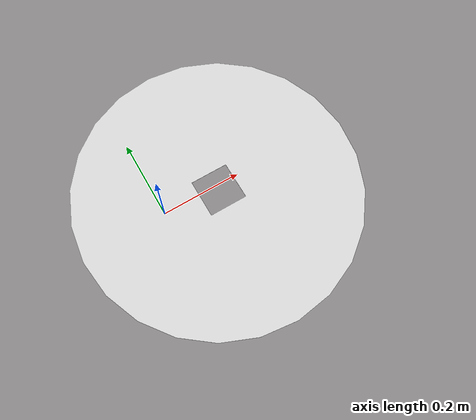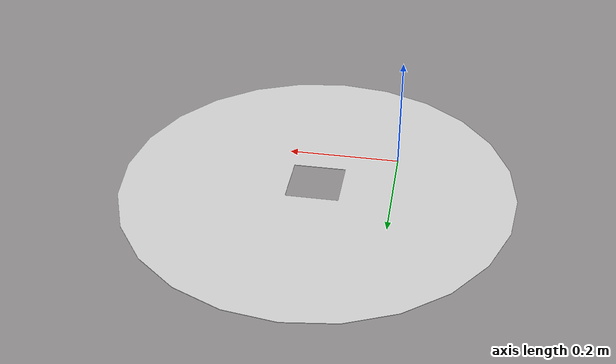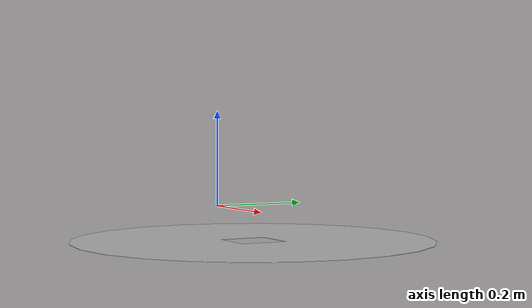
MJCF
<mujoco model="original-73">
  <default>
    <default class="visual">
      <geom group="2" type="mesh" contype="0" conaffinity="0"/>
    </default>
    <default class="collision">
      <geom group="3" type="mesh"/>
    </default>
  </default>
  <asset>
    <material name="material_0_0" specular="0.06666666666666667" shininess="0.03" rgba="0.8 0.8 0.8 1"/>
    <mesh file="original-73.obj"/>
  </asset>
  <worldbody>
    <body name="original-73">
      <geom material="material_0_0" mesh="original-73" class="visual"/>
      <geom mesh="original-73" class="collision"/>
    </body>
  </worldbody>
</mujoco>
